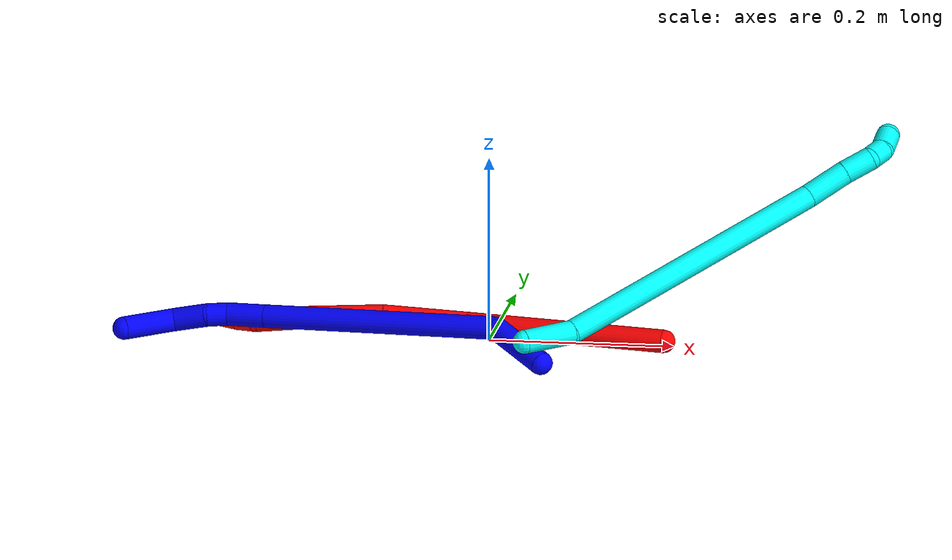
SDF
<sdf version="1.7">
 <world name="default">
  <plugin name="TubeGeneratorPlugin" filename="libtube_generator_plugin.so"/>
  <model name="photoneo_s_sensor">
   <static>1</static>
   <pose>0 0 2 1.57079 1.57079 3.14159</pose>
   <link name="link">
    <inertial><mass>0.1</mass></inertial>
    <sensor name="sensor" type="depth">
     <update_rate>30</update_rate>
     <camera>
      <horizontal_fov>1.22</horizontal_fov>
      <image><width>1920</width><height>1200</height><format>B8G8R8</format></image>
      <clip><near>0.1</near><far>4</far></clip>
      <depth_camera><output>points</output></depth_camera>
     </camera>
     <plugin name="camera_plugin" filename="libgazebo_ros_depth_camera.so">
      <baseline>0.2</baseline>
      <alwaysOn>1</alwaysOn>
      <updateRate>0.0</updateRate>
      <cameraName>camera_ir</cameraName>
      <imageTopicName>/camera/color/image_raw</imageTopicName>
      <cameraInfoTopicName>/camera/color/camera_info</cameraInfoTopicName>
      <depthImageTopicName>/camera/depth/image_raw</depthImageTopicName>
      <depthImageCameraInfoTopicName>/camera/depth/camera_info</depthImageCameraInfoTopicName>
      <pointCloudTopicName>/camera/depth/points</pointCloudTopicName>
      <frameName>fr_optical</frameName>
      <pointCloudCutoff>0.1</pointCloudCutoff>
      <pointCloudCutoffMax>2.0</pointCloudCutoffMax>
      <distortionK1>0</distortionK1>
      <distortionK2>0</distortionK2>
      <distortionK3>0</distortionK3>
      <distortionT1>0</distortionT1>
      <distortionT2>0</distortionT2>
      <CxPrime>0</CxPrime>
      <Cx>0</Cx>
      <Cy>0</Cy>
      <focalLength>0</focalLength>
      <hackBaseline>0</hackBaseline>
     </plugin>
    </sensor>
   </link>
  </model>
  <gravity>0 0 -9.8</gravity>
  <magnetic_field>6e-06 2.3e-05 -4.2e-05</magnetic_field>
  <atmosphere type="adiabatic"/>
  <physics name="default_physics" default="0" type="ode">
   <max_step_size>0.003</max_step_size>
   <real_time_factor>1</real_time_factor>
   <real_time_update_rate>1000</real_time_update_rate>
   <max_contacts>10000</max_contacts>
   <ode>
    <solver>
     <type>quick</type>
     <iters>100</iters>
     <sor>1.3</sor>
     <use_dynamic_moi_rescaling>0</use_dynamic_moi_rescaling>
    </solver>
    <constraints>
     <contact_max_correcting_vel>0</contact_max_correcting_vel>
     <contact_surface_layer>0.001</contact_surface_layer>
     <cfm>0</cfm>
     <erp>0.2</erp>
    </constraints>
   </ode>
  </physics>
  <scene><ambient>0.4 0.4 0.4 1</ambient><background>0.7 0.7 0.7 1</background><shadows>0</shadows></scene>
  <audio><device>default</device></audio>
  <spherical_coordinates>
   <surface_model>EARTH_WGS84</surface_model>
   <latitude_deg>0</latitude_deg>
   <longitude_deg>0</longitude_deg>
   <elevation>0</elevation>
   <heading_deg>0</heading_deg>
  </spherical_coordinates>
  <model name="bin">
   <static>1</static>
   <link name="bottom">
    <collision name="collision-bottom">
     <pose>0 0 -0.01 0 -0 0</pose>
     <geometry><box><size>0.8 0.6 0.02</size></box></geometry>
     <surface>
      <friction><ode><mu>100</mu><mu2>100</mu2></ode></friction>
      <contact><collide_bitmask>65535</collide_bitmask></contact>
     </surface>
    </collision>
   </link>
   <link name="west_wall">
    <collision name="collision-west_wall">
     <pose>-0.41 0 0.1 0 -0 0</pose>
     <geometry><box><size>0.02 0.6 0.2</size></box></geometry>
     <surface>
      <friction><ode><mu>100</mu><mu2>100</mu2></ode></friction>
      <contact><collide_bitmask>65535</collide_bitmask></contact>
     </surface>
    </collision>
   </link>
   <link name="east_wall">
    <collision name="collision-east_wall">
     <pose>0.41 0 0.1 0 -0 0</pose>
     <geometry><box><size>0.02 0.6 0.2</size></box></geometry>
     <surface>
      <friction><ode><mu>100</mu><mu2>100</mu2></ode></friction>
      <contact><collide_bitmask>65535</collide_bitmask></contact>
     </surface>
    </collision>
   </link>
   <link name="south_wall">
    <collision name="collision-south_wall">
     <pose>0 -0.31 0.1 0 -0 0</pose>
     <geometry><box><size>0.8 0.02 0.2</size></box></geometry>
     <surface>
      <friction><ode><mu>100</mu><mu2>100</mu2></ode></friction>
      <contact><collide_bitmask>65535</collide_bitmask></contact>
     </surface>
    </collision>
   </link>
   <link name="north_wall">
    <collision name="collision-north_wall">
     <pose>0 0.31 0.1 0 -0 0</pose>
     <geometry><box><size>0.8 0.02 0.2</size></box></geometry>
     <surface>
      <friction><ode><mu>100</mu><mu2>100</mu2></ode></friction>
      <contact><collide_bitmask>65535</collide_bitmask></contact>
     </surface>
    </collision>
   </link>
  </model>
  <model name="1">
   <static>0</static>
   <link name="1">
    <collision name="collision-cylinder-e_1_1_4">
     <pose>-0.005861 -0.014678 0.034266 0.404711 -0.155949 -0.032057</pose>
     <geometry><cylinder><radius>0.0125</radius><length>0.075471</length></cylinder></geometry>
     <surface>
      <friction><ode><mu>1.16</mu><mu2>1.16</mu2><slip1>0</slip1><slip2>0</slip2></ode></friction>
      <contact><ode><kp>1e+06</kp><kd>1</kd><max_vel>0</max_vel><min_depth>0.001</min_depth></ode></contact>
     </surface>
    </collision>
    <visual name="visual-cylinder-e_1_1_4">
     <pose>-0.005861 -0.014678 0.034266 0.404711 -0.155949 -0.032057</pose>
     <geometry><cylinder><radius>0.0125</radius><length>0.075471</length></cylinder></geometry>
     <material><ambient>0 0 1 1</ambient></material>
    </visual>
    <collision name="collision-cylinder-e_2_4_5">
     <pose>-0.034324 -0.001341 0.194738 -0.218438 -0.173087 0.019027</pose>
     <geometry><cylinder><radius>0.0125</radius><length>0.262477</length></cylinder></geometry>
     <surface>
      <friction><ode><mu>1.16</mu><mu2>1.16</mu2><slip1>0</slip1><slip2>0</slip2></ode></friction>
      <contact><ode><kp>1e+06</kp><kd>1</kd><max_vel>0</max_vel><min_depth>0.001</min_depth></ode></contact>
     </surface>
    </collision>
    <visual name="visual-cylinder-e_2_4_5">
     <pose>-0.034324 -0.001341 0.194738 -0.218438 -0.173087 0.019027</pose>
     <geometry><cylinder><radius>0.0125</radius><length>0.262477</length></cylinder></geometry>
     <material><ambient>0 0 1 1</ambient></material>
    </visual>
    <collision name="collision-cylinder-e_3_5_6">
     <pose>-0.06139 0.031752 0.341381 -0.243539 -0.208859 0.025651</pose>
     <geometry><cylinder><radius>0.0125</radius><length>0.043053</length></cylinder></geometry>
     <surface>
      <friction><ode><mu>1.16</mu><mu2>1.16</mu2><slip1>0</slip1><slip2>0</slip2></ode></friction>
      <contact><ode><kp>1e+06</kp><kd>1</kd><max_vel>0</max_vel><min_depth>0.001</min_depth></ode></contact>
     </surface>
    </collision>
    <visual name="visual-cylinder-e_3_5_6">
     <pose>-0.06139 0.031752 0.341381 -0.243539 -0.208859 0.025651</pose>
     <geometry><cylinder><radius>0.0125</radius><length>0.043053</length></cylinder></geometry>
     <material><ambient>0 0 1 1</ambient></material>
    </visual>
    <collision name="collision-cylinder-e_4_6_7">
     <pose>-0.069527 0.041974 0.37127 -0.498409 -0.32899 0.084439</pose>
     <geometry><cylinder><radius>0.0125</radius><length>0.022742</length></cylinder></geometry>
     <surface>
      <friction><ode><mu>1.16</mu><mu2>1.16</mu2><slip1>0</slip1><slip2>0</slip2></ode></friction>
      <contact><ode><kp>1e+06</kp><kd>1</kd><max_vel>0</max_vel><min_depth>0.001</min_depth></ode></contact>
     </surface>
    </collision>
    <visual name="visual-cylinder-e_4_6_7">
     <pose>-0.069527 0.041974 0.37127 -0.498409 -0.32899 0.084439</pose>
     <geometry><cylinder><radius>0.0125</radius><length>0.022742</length></cylinder></geometry>
     <material><ambient>0 0 1 1</ambient></material>
    </visual>
    <collision name="collision-cylinder-e_5_7_8">
     <pose>-0.074447 0.053992 0.398848 -0.362459 -0.064205 0.011769</pose>
     <geometry><cylinder><radius>0.0125</radius><length>0.038852</length></cylinder></geometry>
     <surface>
      <friction><ode><mu>1.16</mu><mu2>1.16</mu2><slip1>0</slip1><slip2>0</slip2></ode></friction>
      <contact><ode><kp>1e+06</kp><kd>1</kd><max_vel>0</max_vel><min_depth>0.001</min_depth></ode></contact>
     </surface>
    </collision>
    <visual name="visual-cylinder-e_5_7_8">
     <pose>-0.074447 0.053992 0.398848 -0.362459 -0.064205 0.011769</pose>
     <geometry><cylinder><radius>0.0125</radius><length>0.038852</length></cylinder></geometry>
     <material><ambient>0 0 1 1</ambient></material>
    </visual>
    <collision name="collision-cylinder-e_6_8_2">
     <pose>-0.089865 0.081037 0.431676 -0.940994 -0.516376 0.267022</pose>
     <geometry><cylinder><radius>0.0125</radius><length>0.057405</length></cylinder></geometry>
     <surface>
      <friction><ode><mu>1.16</mu><mu2>1.16</mu2><slip1>0</slip1><slip2>0</slip2></ode></friction>
      <contact><ode><kp>1e+06</kp><kd>1</kd><max_vel>0</max_vel><min_depth>0.001</min_depth></ode></contact>
     </surface>
    </collision>
    <visual name="visual-cylinder-e_6_8_2">
     <pose>-0.089865 0.081037 0.431676 -0.940994 -0.516376 0.267022</pose>
     <geometry><cylinder><radius>0.0125</radius><length>0.057405</length></cylinder></geometry>
     <material><ambient>0 0 1 1</ambient></material>
    </visual>
    <collision name="collision-sphere-2">
     <pose>-0.104037 0.101208 0.446377 0 -0 0</pose>
     <geometry><sphere><radius>0.0125</radius></sphere></geometry>
     <surface>
      <friction><ode><mu>1.16</mu><mu2>1.16</mu2><slip1>0</slip1><slip2>0</slip2></ode></friction>
      <contact><ode><kp>1e+06</kp><kd>1</kd><max_vel>0</max_vel><min_depth>0.001</min_depth></ode></contact>
     </surface>
    </collision>
    <visual name="visual-sphere-2">
     <pose>-0.104037 0.101208 0.446377 0 -0 0</pose>
     <geometry><sphere><radius>0.0125</radius></sphere></geometry>
     <material><ambient>0 0 1 1</ambient></material>
    </visual>
    <collision name="collision-sphere-4">
     <pose>-0.011722 -0.029357 0.068533 0 -0 0</pose>
     <geometry><sphere><radius>0.0125</radius></sphere></geometry>
     <surface>
      <friction><ode><mu>1.16</mu><mu2>1.16</mu2><slip1>0</slip1><slip2>0</slip2></ode></friction>
      <contact><ode><kp>1e+06</kp><kd>1</kd><max_vel>0</max_vel><min_depth>0.001</min_depth></ode></contact>
     </surface>
    </collision>
    <visual name="visual-sphere-4">
     <pose>-0.011722 -0.029357 0.068533 0 -0 0</pose>
     <geometry><sphere><radius>0.0125</radius></sphere></geometry>
     <material><ambient>0 0 1 1</ambient></material>
    </visual>
    <collision name="collision-sphere-1">
     <geometry><sphere><radius>0.0125</radius></sphere></geometry>
     <surface>
      <friction><ode><mu>1.16</mu><mu2>1.16</mu2><slip1>0</slip1><slip2>0</slip2></ode></friction>
      <contact><ode><kp>1e+06</kp><kd>1</kd><max_vel>0</max_vel><min_depth>0.001</min_depth></ode></contact>
     </surface>
    </collision>
    <visual name="visual-sphere-1">
     <geometry><sphere><radius>0.0125</radius></sphere></geometry>
     <material><ambient>0 0 1 1</ambient></material>
    </visual>
    <collision name="collision-sphere-8">
     <pose>-0.075694 0.060865 0.416975 0 -0 0</pose>
     <geometry><sphere><radius>0.0125</radius></sphere></geometry>
     <surface>
      <friction><ode><mu>1.16</mu><mu2>1.16</mu2><slip1>0</slip1><slip2>0</slip2></ode></friction>
      <contact><ode><kp>1e+06</kp><kd>1</kd><max_vel>0</max_vel><min_depth>0.001</min_depth></ode></contact>
     </surface>
    </collision>
    <visual name="visual-sphere-8">
     <pose>-0.075694 0.060865 0.416975 0 -0 0</pose>
     <geometry><sphere><radius>0.0125</radius></sphere></geometry>
     <material><ambient>0 0 1 1</ambient></material>
    </visual>
    <collision name="collision-sphere-5">
     <pose>-0.056927 0.026674 0.320944 0 -0 0</pose>
     <geometry><sphere><radius>0.0125</radius></sphere></geometry>
     <surface>
      <friction><ode><mu>1.16</mu><mu2>1.16</mu2><slip1>0</slip1><slip2>0</slip2></ode></friction>
      <contact><ode><kp>1e+06</kp><kd>1</kd><max_vel>0</max_vel><min_depth>0.001</min_depth></ode></contact>
     </surface>
    </collision>
    <visual name="visual-sphere-5">
     <pose>-0.056927 0.026674 0.320944 0 -0 0</pose>
     <geometry><sphere><radius>0.0125</radius></sphere></geometry>
     <material><ambient>0 0 1 1</ambient></material>
    </visual>
    <collision name="collision-sphere-6">
     <pose>-0.065854 0.03683 0.361818 0 -0 0</pose>
     <geometry><sphere><radius>0.0125</radius></sphere></geometry>
     <surface>
      <friction><ode><mu>1.16</mu><mu2>1.16</mu2><slip1>0</slip1><slip2>0</slip2></ode></friction>
      <contact><ode><kp>1e+06</kp><kd>1</kd><max_vel>0</max_vel><min_depth>0.001</min_depth></ode></contact>
     </surface>
    </collision>
    <visual name="visual-sphere-6">
     <pose>-0.065854 0.03683 0.361818 0 -0 0</pose>
     <geometry><sphere><radius>0.0125</radius></sphere></geometry>
     <material><ambient>0 0 1 1</ambient></material>
    </visual>
    <collision name="collision-sphere-7">
     <pose>-0.073201 0.047118 0.380722 0 -0 0</pose>
     <geometry><sphere><radius>0.0125</radius></sphere></geometry>
     <surface>
      <friction><ode><mu>1.16</mu><mu2>1.16</mu2><slip1>0</slip1><slip2>0</slip2></ode></friction>
      <contact><ode><kp>1e+06</kp><kd>1</kd><max_vel>0</max_vel><min_depth>0.001</min_depth></ode></contact>
     </surface>
    </collision>
    <visual name="visual-sphere-7">
     <pose>-0.073201 0.047118 0.380722 0 -0 0</pose>
     <geometry><sphere><radius>0.0125</radius></sphere></geometry>
     <material><ambient>0 0 1 1</ambient></material>
    </visual>
    <inertial>
     <pose>-0.043454 0.015223 0.234235 0 -0 0</pose>
     <mass>0.5</mass>
     <inertia>
      <ixx>0.001588</ixx>
      <ixy>0</ixy>
      <ixz>0</ixz>
      <iyy>0.001585</iyy>
      <iyz>0</iyz>
      <izz>-1.3e-05</izz>
     </inertia>
    </inertial>
   </link>
   <pose>0.074634 -0.131374 0.011903 -1.64707 0.917173 1.03602</pose>
  </model>
  <model name="2">
   <static>0</static>
   <link name="2">
    <collision name="collision-cylinder-e_1_1_4">
     <pose>-0.06143 0.018017 0.091011 -0.195435 -0.584851 0.059008</pose>
     <geometry><cylinder><radius>0.0125</radius><length>0.222542</length></cylinder></geometry>
     <surface>
      <friction><ode><mu>1.16</mu><mu2>1.16</mu2><slip1>0</slip1><slip2>0</slip2></ode></friction>
      <contact><ode><kp>1e+06</kp><kd>1</kd><max_vel>0</max_vel><min_depth>0.001</min_depth></ode></contact>
     </surface>
    </collision>
    <visual name="visual-cylinder-e_1_1_4">
     <pose>-0.06143 0.018017 0.091011 -0.195435 -0.584851 0.059008</pose>
     <geometry><cylinder><radius>0.0125</radius><length>0.222542</length></cylinder></geometry>
     <material><ambient>1 0 0 1</ambient></material>
    </visual>
    <collision name="collision-cylinder-e_2_4_5">
     <pose>-0.158579 0.037646 0.21113 -0.055363 -0.886268 0.026281</pose>
     <geometry><cylinder><radius>0.0125</radius><length>0.092213</length></cylinder></geometry>
     <surface>
      <friction><ode><mu>1.16</mu><mu2>1.16</mu2><slip1>0</slip1><slip2>0</slip2></ode></friction>
      <contact><ode><kp>1e+06</kp><kd>1</kd><max_vel>0</max_vel><min_depth>0.001</min_depth></ode></contact>
     </surface>
    </collision>
    <visual name="visual-cylinder-e_2_4_5">
     <pose>-0.158579 0.037646 0.21113 -0.055363 -0.886268 0.026281</pose>
     <geometry><cylinder><radius>0.0125</radius><length>0.092213</length></cylinder></geometry>
     <material><ambient>1 0 0 1</ambient></material>
    </visual>
    <collision name="collision-cylinder-e_3_5_6">
     <pose>-0.229535 0.045061 0.266054 -0.221055 -0.92673 0.110788</pose>
     <geometry><cylinder><radius>0.0125</radius><length>0.088129</length></cylinder></geometry>
     <surface>
      <friction><ode><mu>1.16</mu><mu2>1.16</mu2><slip1>0</slip1><slip2>0</slip2></ode></friction>
      <contact><ode><kp>1e+06</kp><kd>1</kd><max_vel>0</max_vel><min_depth>0.001</min_depth></ode></contact>
     </surface>
    </collision>
    <visual name="visual-cylinder-e_3_5_6">
     <pose>-0.229535 0.045061 0.266054 -0.221055 -0.92673 0.110788</pose>
     <geometry><cylinder><radius>0.0125</radius><length>0.088129</length></cylinder></geometry>
     <material><ambient>1 0 0 1</ambient></material>
    </visual>
    <collision name="collision-cylinder-e_4_6_7">
     <pose>-0.283873 0.055402 0.306688 -0.297264 -0.88912 0.142417</pose>
     <geometry><cylinder><radius>0.0125</radius><length>0.049197</length></cylinder></geometry>
     <surface>
      <friction><ode><mu>1.16</mu><mu2>1.16</mu2><slip1>0</slip1><slip2>0</slip2></ode></friction>
      <contact><ode><kp>1e+06</kp><kd>1</kd><max_vel>0</max_vel><min_depth>0.001</min_depth></ode></contact>
     </surface>
    </collision>
    <visual name="visual-cylinder-e_4_6_7">
     <pose>-0.283873 0.055402 0.306688 -0.297264 -0.88912 0.142417</pose>
     <geometry><cylinder><radius>0.0125</radius><length>0.049197</length></cylinder></geometry>
     <material><ambient>1 0 0 1</ambient></material>
    </visual>
    <collision name="collision-cylinder-e_5_7_8">
     <pose>-0.306381 0.063139 0.332866 -0.274367 -0.2811 0.039059</pose>
     <geometry><cylinder><radius>0.0125</radius><length>0.024562</length></cylinder></geometry>
     <surface>
      <friction><ode><mu>1.16</mu><mu2>1.16</mu2><slip1>0</slip1><slip2>0</slip2></ode></friction>
      <contact><ode><kp>1e+06</kp><kd>1</kd><max_vel>0</max_vel><min_depth>0.001</min_depth></ode></contact>
     </surface>
    </collision>
    <visual name="visual-cylinder-e_5_7_8">
     <pose>-0.306381 0.063139 0.332866 -0.274367 -0.2811 0.039059</pose>
     <geometry><cylinder><radius>0.0125</radius><length>0.024562</length></cylinder></geometry>
     <material><ambient>1 0 0 1</ambient></material>
    </visual>
    <collision name="collision-cylinder-e_6_8_2">
     <pose>-0.314638 0.06768 0.354762 -0.126895 -0.428231 0.027629</pose>
     <geometry><cylinder><radius>0.0125</radius><length>0.023357</length></cylinder></geometry>
     <surface>
      <friction><ode><mu>1.16</mu><mu2>1.16</mu2><slip1>0</slip1><slip2>0</slip2></ode></friction>
      <contact><ode><kp>1e+06</kp><kd>1</kd><max_vel>0</max_vel><min_depth>0.001</min_depth></ode></contact>
     </surface>
    </collision>
    <visual name="visual-cylinder-e_6_8_2">
     <pose>-0.314638 0.06768 0.354762 -0.126895 -0.428231 0.027629</pose>
     <geometry><cylinder><radius>0.0125</radius><length>0.023357</length></cylinder></geometry>
     <material><ambient>1 0 0 1</ambient></material>
    </visual>
    <collision name="collision-sphere-2">
     <pose>-0.319487 0.069025 0.365301 0 -0 0</pose>
     <geometry><sphere><radius>0.0125</radius></sphere></geometry>
     <surface>
      <friction><ode><mu>1.16</mu><mu2>1.16</mu2><slip1>0</slip1><slip2>0</slip2></ode></friction>
      <contact><ode><kp>1e+06</kp><kd>1</kd><max_vel>0</max_vel><min_depth>0.001</min_depth></ode></contact>
     </surface>
    </collision>
    <visual name="visual-sphere-2">
     <pose>-0.319487 0.069025 0.365301 0 -0 0</pose>
     <geometry><sphere><radius>0.0125</radius></sphere></geometry>
     <material><ambient>1 0 0 1</ambient></material>
    </visual>
    <collision name="collision-sphere-4">
     <pose>-0.12286 0.036033 0.182022 0 -0 0</pose>
     <geometry><sphere><radius>0.0125</radius></sphere></geometry>
     <surface>
      <friction><ode><mu>1.16</mu><mu2>1.16</mu2><slip1>0</slip1><slip2>0</slip2></ode></friction>
      <contact><ode><kp>1e+06</kp><kd>1</kd><max_vel>0</max_vel><min_depth>0.001</min_depth></ode></contact>
     </surface>
    </collision>
    <visual name="visual-sphere-4">
     <pose>-0.12286 0.036033 0.182022 0 -0 0</pose>
     <geometry><sphere><radius>0.0125</radius></sphere></geometry>
     <material><ambient>1 0 0 1</ambient></material>
    </visual>
    <collision name="collision-sphere-1">
     <geometry><sphere><radius>0.0125</radius></sphere></geometry>
     <surface>
      <friction><ode><mu>1.16</mu><mu2>1.16</mu2><slip1>0</slip1><slip2>0</slip2></ode></friction>
      <contact><ode><kp>1e+06</kp><kd>1</kd><max_vel>0</max_vel><min_depth>0.001</min_depth></ode></contact>
     </surface>
    </collision>
    <visual name="visual-sphere-1">
     <geometry><sphere><radius>0.0125</radius></sphere></geometry>
     <material><ambient>1 0 0 1</ambient></material>
    </visual>
    <collision name="collision-sphere-8">
     <pose>-0.309788 0.066336 0.344224 0 -0 0</pose>
     <geometry><sphere><radius>0.0125</radius></sphere></geometry>
     <surface>
      <friction><ode><mu>1.16</mu><mu2>1.16</mu2><slip1>0</slip1><slip2>0</slip2></ode></friction>
      <contact><ode><kp>1e+06</kp><kd>1</kd><max_vel>0</max_vel><min_depth>0.001</min_depth></ode></contact>
     </surface>
    </collision>
    <visual name="visual-sphere-8">
     <pose>-0.309788 0.066336 0.344224 0 -0 0</pose>
     <geometry><sphere><radius>0.0125</radius></sphere></geometry>
     <material><ambient>1 0 0 1</ambient></material>
    </visual>
    <collision name="collision-sphere-5">
     <pose>-0.194299 0.03926 0.240239 0 -0 0</pose>
     <geometry><sphere><radius>0.0125</radius></sphere></geometry>
     <surface>
      <friction><ode><mu>1.16</mu><mu2>1.16</mu2><slip1>0</slip1><slip2>0</slip2></ode></friction>
      <contact><ode><kp>1e+06</kp><kd>1</kd><max_vel>0</max_vel><min_depth>0.001</min_depth></ode></contact>
     </surface>
    </collision>
    <visual name="visual-sphere-5">
     <pose>-0.194299 0.03926 0.240239 0 -0 0</pose>
     <geometry><sphere><radius>0.0125</radius></sphere></geometry>
     <material><ambient>1 0 0 1</ambient></material>
    </visual>
    <collision name="collision-sphere-6">
     <pose>-0.264772 0.050862 0.291868 0 -0 0</pose>
     <geometry><sphere><radius>0.0125</radius></sphere></geometry>
     <surface>
      <friction><ode><mu>1.16</mu><mu2>1.16</mu2><slip1>0</slip1><slip2>0</slip2></ode></friction>
      <contact><ode><kp>1e+06</kp><kd>1</kd><max_vel>0</max_vel><min_depth>0.001</min_depth></ode></contact>
     </surface>
    </collision>
    <visual name="visual-sphere-6">
     <pose>-0.264772 0.050862 0.291868 0 -0 0</pose>
     <geometry><sphere><radius>0.0125</radius></sphere></geometry>
     <material><ambient>1 0 0 1</ambient></material>
    </visual>
    <collision name="collision-sphere-7">
     <pose>-0.302974 0.059942 0.321508 0 -0 0</pose>
     <geometry><sphere><radius>0.0125</radius></sphere></geometry>
     <surface>
      <friction><ode><mu>1.16</mu><mu2>1.16</mu2><slip1>0</slip1><slip2>0</slip2></ode></friction>
      <contact><ode><kp>1e+06</kp><kd>1</kd><max_vel>0</max_vel><min_depth>0.001</min_depth></ode></contact>
     </surface>
    </collision>
    <visual name="visual-sphere-7">
     <pose>-0.302974 0.059942 0.321508 0 -0 0</pose>
     <geometry><sphere><radius>0.0125</radius></sphere></geometry>
     <material><ambient>1 0 0 1</ambient></material>
    </visual>
    <inertial>
     <pose>-0.154725 0.034619 0.18944 0 -0 0</pose>
     <mass>0.5</mass>
     <inertia>
      <ixx>0.00089</ixx>
      <ixy>0</ixy>
      <ixz>0</ixz>
      <iyy>0.001115</iyy>
      <iyz>0</iyz>
      <izz>0.000489</izz>
     </inertia>
    </inertial>
   </link>
   <pose>0.191653 -0.022139 0.0115 -1.36188 -0.020367 0.785741</pose>
  </model>
  <model name="3">
   <static>0</static>
   <link name="3">
    <collision name="collision-cylinder-e_1_1_4">
     <pose>0.004247 -0.002677 0.026076 0.102285 0.160633 0.00824</pose>
     <geometry><cylinder><radius>0.0125</radius><length>0.05311</length></cylinder></geometry>
     <surface>
      <friction><ode><mu>1.16</mu><mu2>1.16</mu2><slip1>0</slip1><slip2>0</slip2></ode></friction>
      <contact><ode><kp>1e+06</kp><kd>1</kd><max_vel>0</max_vel><min_depth>0.001</min_depth></ode></contact>
     </surface>
    </collision>
    <visual name="visual-cylinder-e_1_1_4">
     <pose>0.004247 -0.002677 0.026076 0.102285 0.160633 0.00824</pose>
     <geometry><cylinder><radius>0.0125</radius><length>0.05311</length></cylinder></geometry>
     <material><ambient>0.003922 1 0.996078 1</ambient></material>
    </visual>
    <collision name="collision-cylinder-e_2_4_5">
     <pose>0.077094 -0.004996 0.197017 -0.002462 0.442258 -0.000553</pose>
     <geometry><cylinder><radius>0.0125</radius><length>0.320575</length></cylinder></geometry>
     <surface>
      <friction><ode><mu>1.16</mu><mu2>1.16</mu2><slip1>0</slip1><slip2>0</slip2></ode></friction>
      <contact><ode><kp>1e+06</kp><kd>1</kd><max_vel>0</max_vel><min_depth>0.001</min_depth></ode></contact>
     </surface>
    </collision>
    <visual name="visual-cylinder-e_2_4_5">
     <pose>0.077094 -0.004996 0.197017 -0.002462 0.442258 -0.000553</pose>
     <geometry><cylinder><radius>0.0125</radius><length>0.320575</length></cylinder></geometry>
     <material><ambient>0.003922 1 0.996078 1</ambient></material>
    </visual>
    <collision name="collision-cylinder-e_3_5_6">
     <pose>0.153304 0.001701 0.363276 -0.288121 0.328675 -0.048104</pose>
     <geometry><cylinder><radius>0.0125</radius><length>0.047152</length></cylinder></geometry>
     <surface>
      <friction><ode><mu>1.16</mu><mu2>1.16</mu2><slip1>0</slip1><slip2>0</slip2></ode></friction>
      <contact><ode><kp>1e+06</kp><kd>1</kd><max_vel>0</max_vel><min_depth>0.001</min_depth></ode></contact>
     </surface>
    </collision>
    <visual name="visual-cylinder-e_3_5_6">
     <pose>0.153304 0.001701 0.363276 -0.288121 0.328675 -0.048104</pose>
     <geometry><cylinder><radius>0.0125</radius><length>0.047152</length></cylinder></geometry>
     <material><ambient>0.003922 1 0.996078 1</ambient></material>
    </visual>
    <collision name="collision-cylinder-e_4_6_7">
     <pose>0.164912 0.012021 0.39965 -0.259671 0.252405 -0.03313</pose>
     <geometry><cylinder><radius>0.0125</radius><length>0.032012</length></cylinder></geometry>
     <surface>
      <friction><ode><mu>1.16</mu><mu2>1.16</mu2><slip1>0</slip1><slip2>0</slip2></ode></friction>
      <contact><ode><kp>1e+06</kp><kd>1</kd><max_vel>0</max_vel><min_depth>0.001</min_depth></ode></contact>
     </surface>
    </collision>
    <visual name="visual-cylinder-e_4_6_7">
     <pose>0.164912 0.012021 0.39965 -0.259671 0.252405 -0.03313</pose>
     <geometry><cylinder><radius>0.0125</radius><length>0.032012</length></cylinder></geometry>
     <material><ambient>0.003922 1 0.996078 1</ambient></material>
    </visual>
    <collision name="collision-cylinder-e_5_7_8">
     <pose>0.174893 0.014646 0.423023 0.160011 0.613262 0.05076</pose>
     <geometry><cylinder><radius>0.0125</radius><length>0.020795</length></cylinder></geometry>
     <surface>
      <friction><ode><mu>1.16</mu><mu2>1.16</mu2><slip1>0</slip1><slip2>0</slip2></ode></friction>
      <contact><ode><kp>1e+06</kp><kd>1</kd><max_vel>0</max_vel><min_depth>0.001</min_depth></ode></contact>
     </surface>
    </collision>
    <visual name="visual-cylinder-e_5_7_8">
     <pose>0.174893 0.014646 0.423023 0.160011 0.613262 0.05076</pose>
     <geometry><cylinder><radius>0.0125</radius><length>0.020795</length></cylinder></geometry>
     <material><ambient>0.003922 1 0.996078 1</ambient></material>
    </visual>
    <collision name="collision-cylinder-e_6_8_2">
     <pose>0.192058 0.011174 0.438064 0.308305 1.01298 0.171979</pose>
     <geometry><cylinder><radius>0.0125</radius><length>0.026357</length></cylinder></geometry>
     <surface>
      <friction><ode><mu>1.16</mu><mu2>1.16</mu2><slip1>0</slip1><slip2>0</slip2></ode></friction>
      <contact><ode><kp>1e+06</kp><kd>1</kd><max_vel>0</max_vel><min_depth>0.001</min_depth></ode></contact>
     </surface>
    </collision>
    <visual name="visual-cylinder-e_6_8_2">
     <pose>0.192058 0.011174 0.438064 0.308305 1.01298 0.171979</pose>
     <geometry><cylinder><radius>0.0125</radius><length>0.026357</length></cylinder></geometry>
     <material><ambient>0.003922 1 0.996078 1</ambient></material>
    </visual>
    <collision name="collision-sphere-2">
     <pose>0.203239 0.009057 0.444711 0 -0 0</pose>
     <geometry><sphere><radius>0.0125</radius></sphere></geometry>
     <surface>
      <friction><ode><mu>1.16</mu><mu2>1.16</mu2><slip1>0</slip1><slip2>0</slip2></ode></friction>
      <contact><ode><kp>1e+06</kp><kd>1</kd><max_vel>0</max_vel><min_depth>0.001</min_depth></ode></contact>
     </surface>
    </collision>
    <visual name="visual-sphere-2">
     <pose>0.203239 0.009057 0.444711 0 -0 0</pose>
     <geometry><sphere><radius>0.0125</radius></sphere></geometry>
     <material><ambient>0.003922 1 0.996078 1</ambient></material>
    </visual>
    <collision name="collision-sphere-4">
     <pose>0.008494 -0.005353 0.052152 0 -0 0</pose>
     <geometry><sphere><radius>0.0125</radius></sphere></geometry>
     <surface>
      <friction><ode><mu>1.16</mu><mu2>1.16</mu2><slip1>0</slip1><slip2>0</slip2></ode></friction>
      <contact><ode><kp>1e+06</kp><kd>1</kd><max_vel>0</max_vel><min_depth>0.001</min_depth></ode></contact>
     </surface>
    </collision>
    <visual name="visual-sphere-4">
     <pose>0.008494 -0.005353 0.052152 0 -0 0</pose>
     <geometry><sphere><radius>0.0125</radius></sphere></geometry>
     <material><ambient>0.003922 1 0.996078 1</ambient></material>
    </visual>
    <collision name="collision-sphere-1">
     <geometry><sphere><radius>0.0125</radius></sphere></geometry>
     <surface>
      <friction><ode><mu>1.16</mu><mu2>1.16</mu2><slip1>0</slip1><slip2>0</slip2></ode></friction>
      <contact><ode><kp>1e+06</kp><kd>1</kd><max_vel>0</max_vel><min_depth>0.001</min_depth></ode></contact>
     </surface>
    </collision>
    <visual name="visual-sphere-1">
     <geometry><sphere><radius>0.0125</radius></sphere></geometry>
     <material><ambient>0.003922 1 0.996078 1</ambient></material>
    </visual>
    <collision name="collision-sphere-8">
     <pose>0.180877 0.013291 0.431417 0 -0 0</pose>
     <geometry><sphere><radius>0.0125</radius></sphere></geometry>
     <surface>
      <friction><ode><mu>1.16</mu><mu2>1.16</mu2><slip1>0</slip1><slip2>0</slip2></ode></friction>
      <contact><ode><kp>1e+06</kp><kd>1</kd><max_vel>0</max_vel><min_depth>0.001</min_depth></ode></contact>
     </surface>
    </collision>
    <visual name="visual-sphere-8">
     <pose>0.180877 0.013291 0.431417 0 -0 0</pose>
     <geometry><sphere><radius>0.0125</radius></sphere></geometry>
     <material><ambient>0.003922 1 0.996078 1</ambient></material>
    </visual>
    <collision name="collision-sphere-5">
     <pose>0.145694 -0.00464 0.341882 0 -0 0</pose>
     <geometry><sphere><radius>0.0125</radius></sphere></geometry>
     <surface>
      <friction><ode><mu>1.16</mu><mu2>1.16</mu2><slip1>0</slip1><slip2>0</slip2></ode></friction>
      <contact><ode><kp>1e+06</kp><kd>1</kd><max_vel>0</max_vel><min_depth>0.001</min_depth></ode></contact>
     </surface>
    </collision>
    <visual name="visual-sphere-5">
     <pose>0.145694 -0.00464 0.341882 0 -0 0</pose>
     <geometry><sphere><radius>0.0125</radius></sphere></geometry>
     <material><ambient>0.003922 1 0.996078 1</ambient></material>
    </visual>
    <collision name="collision-sphere-6">
     <pose>0.160914 0.008041 0.38467 0 -0 0</pose>
     <geometry><sphere><radius>0.0125</radius></sphere></geometry>
     <surface>
      <friction><ode><mu>1.16</mu><mu2>1.16</mu2><slip1>0</slip1><slip2>0</slip2></ode></friction>
      <contact><ode><kp>1e+06</kp><kd>1</kd><max_vel>0</max_vel><min_depth>0.001</min_depth></ode></contact>
     </surface>
    </collision>
    <visual name="visual-sphere-6">
     <pose>0.160914 0.008041 0.38467 0 -0 0</pose>
     <geometry><sphere><radius>0.0125</radius></sphere></geometry>
     <material><ambient>0.003922 1 0.996078 1</ambient></material>
    </visual>
    <collision name="collision-sphere-7">
     <pose>0.168909 0.016 0.414629 0 -0 0</pose>
     <geometry><sphere><radius>0.0125</radius></sphere></geometry>
     <surface>
      <friction><ode><mu>1.16</mu><mu2>1.16</mu2><slip1>0</slip1><slip2>0</slip2></ode></friction>
      <contact><ode><kp>1e+06</kp><kd>1</kd><max_vel>0</max_vel><min_depth>0.001</min_depth></ode></contact>
     </surface>
    </collision>
    <visual name="visual-sphere-7">
     <pose>0.168909 0.016 0.414629 0 -0 0</pose>
     <geometry><sphere><radius>0.0125</radius></sphere></geometry>
     <material><ambient>0.003922 1 0.996078 1</ambient></material>
    </visual>
    <inertial>
     <pose>0.092294 -0.00136 0.229618 0 -0 0</pose>
     <mass>0.5</mass>
     <inertia>
      <ixx>0.002538</ixx>
      <ixy>0</ixy>
      <ixz>0</ixz>
      <iyy>0.00279</iyy>
      <iyz>0</iyz>
      <izz>-0.001163</izz>
     </inertia>
    </inertial>
   </link>
   <pose>0.080163 -0.287589 0.076181 1.47567 -0.608225 2.00241</pose>
  </model>
 </world>
</sdf>
